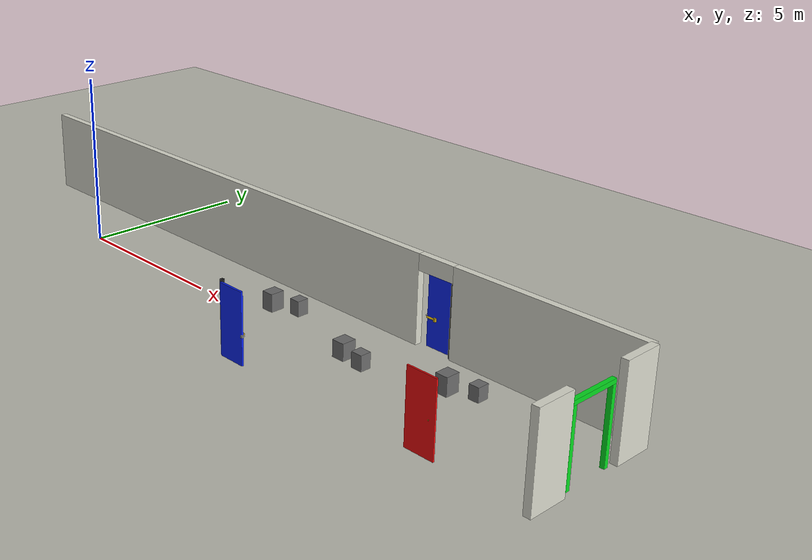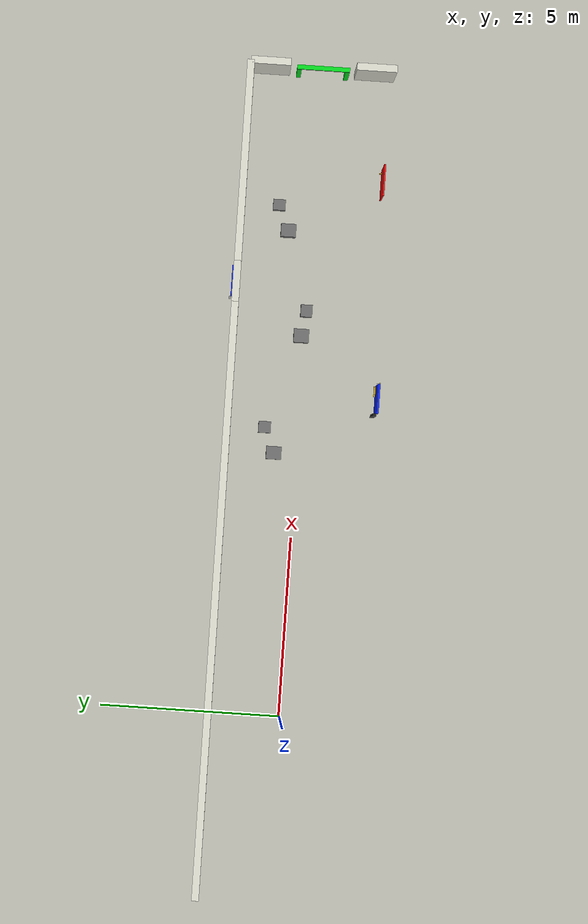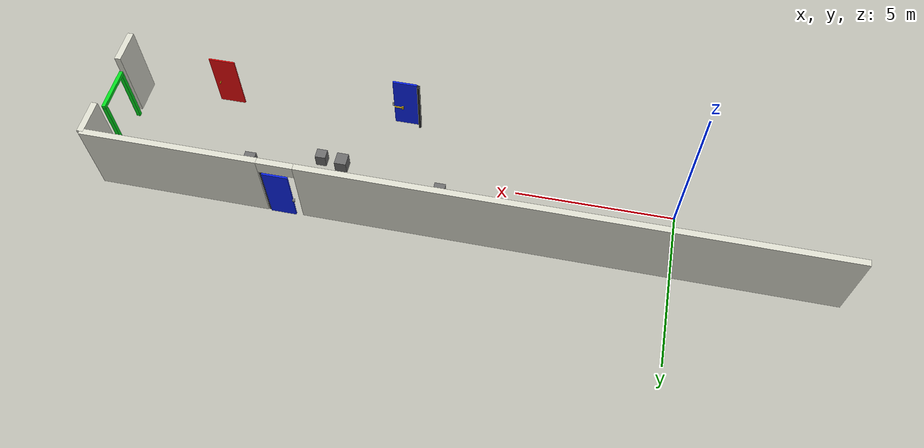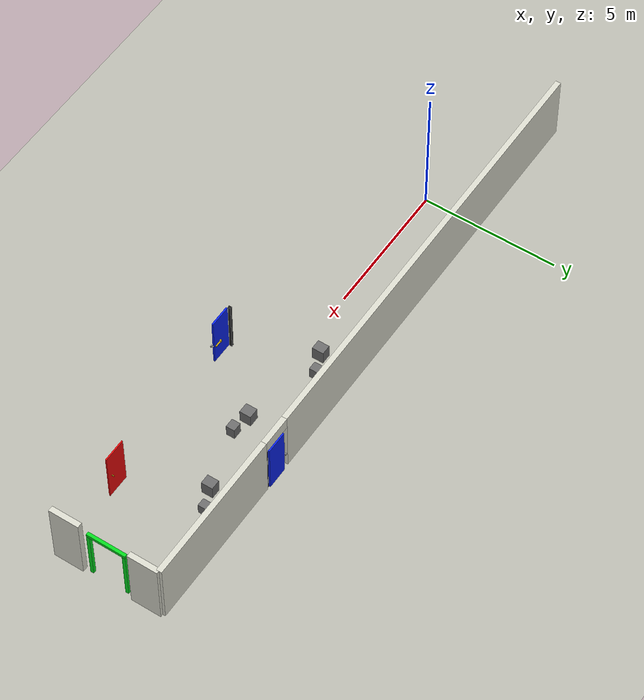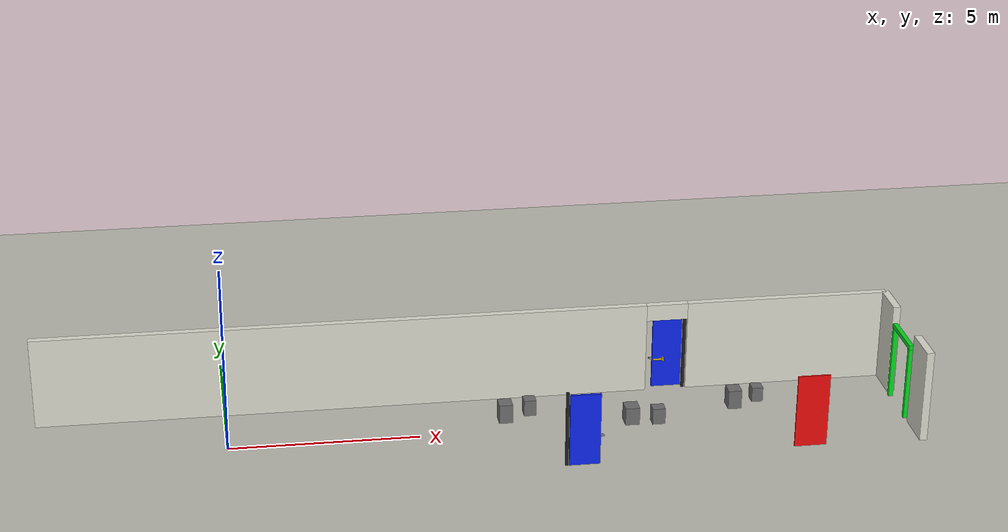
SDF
<sdf version="1.6">
 <world name="fire_corridor">
  <model name="ground_plane">
   <static>true</static>
   <link name="link">
    <collision name="col"><geometry><plane><normal>0 0 1</normal><size>30 10</size></plane></geometry></collision>
    <visual name="vis">
     <geometry><plane><normal>0 0 1</normal><size>30 10</size></plane></geometry>
     <material><ambient>0.72 0.72 0.68 1</ambient><diffuse>0.72 0.72 0.68 1</diffuse></material>
    </visual>
   </link>
  </model>
  <model name="wall_north">
   <static>true</static>
   <pose>6.5 2 1.25 0 0 0</pose>
   <link name="link">
    <collision name="collision_wall_0">
     <geometry><box><size>16.388571 0.200000 2.500000</size></box></geometry>
     <pose>-3.305714 0 0.000000 0 0 0</pose>
    </collision>
    <visual name="visual_wall_0">
     <geometry><box><size>16.388571 0.200000 2.500000</size></box></geometry>
     <material><ambient>0.85 0.85 0.80 1</ambient><diffuse>0.85 0.85 0.80 1</diffuse></material>
     <pose>-3.305714 0 0.000000 0 0 0</pose>
    </visual>
    <collision name="collision_lintel_0">
     <geometry><box><size>1.116429 0.200000 0.450000</size></box></geometry>
     <pose>5.446786 0 1.025000 0 0 0</pose>
    </collision>
    <visual name="visual_lintel_0">
     <geometry><box><size>1.116429 0.200000 0.450000</size></box></geometry>
     <material><ambient>0.85 0.85 0.80 1</ambient><diffuse>0.85 0.85 0.80 1</diffuse></material>
     <pose>5.446786 0 1.025000 0 0 0</pose>
    </visual>
    <collision name="collision_wall_end">
     <geometry><box><size>5.495000 0.200000 2.500000</size></box></geometry>
     <pose>8.752500 0 0.000000 0 0 0</pose>
    </collision>
    <visual name="visual_wall_end">
     <geometry><box><size>5.495000 0.200000 2.500000</size></box></geometry>
     <material><ambient>0.85 0.85 0.80 1</ambient><diffuse>0.85 0.85 0.80 1</diffuse></material>
     <pose>8.752500 0 0.000000 0 0 0</pose>
    </visual>
   </link>
  </model>
  <model name="wall_east_upper">
   <static>true</static>
   <pose>18 1.45 1.25 0 0 0</pose>
   <link name="link">
    <collision name="col"><geometry><box><size>0.2 1.1 2.5</size></box></geometry></collision>
    <visual name="vis">
     <geometry><box><size>0.2 1.1 2.5</size></box></geometry>
     <material><ambient>0.85 0.85 0.80 1</ambient><diffuse>0.85 0.85 0.80 1</diffuse></material>
    </visual>
   </link>
  </model>
  <model name="wall_east_lower">
   <static>true</static>
   <pose>18 -1.45 1.25 0 0 0</pose>
   <link name="link">
    <collision name="col"><geometry><box><size>0.2 1.1 2.5</size></box></geometry></collision>
    <visual name="vis">
     <geometry><box><size>0.2 1.1 2.5</size></box></geometry>
     <material><ambient>0.85 0.85 0.80 1</ambient><diffuse>0.85 0.85 0.80 1</diffuse></material>
    </visual>
   </link>
  </model>
  <model name="door_red3">
   <static>true</static>
   <pose>15.00 -1.86 1.0 0 0 0</pose>
   <link name="link">
    <visual name="panel">
     <geometry><box><size>0.85 0.045 2.0</size></box></geometry>
     <material><ambient>0.92 0.04 0.04 1</ambient><diffuse>0.92 0.04 0.04 1</diffuse></material>
    </visual>
   </link>
  </model>
  <model name="handle_red3">
   <static>true</static>
   <pose>15.24 -1.82 0.95 1.5708 0 0</pose>
   <link name="link">
    <visual name="handle">
     <geometry><cylinder><radius>0.018</radius><length>0.13</length></cylinder></geometry>
     <material><ambient>0.75 0.60 0.05 1</ambient><diffuse>0.75 0.60 0.05 1</diffuse></material>
    </visual>
   </link>
  </model>
  <model name="exit_green">
   <static>true</static>
   <pose>17.92 0 1.0 0 0 0</pose>
   <link name="link">
    <visual name="jamb_left">
     <pose>0.0 0.66 0.0 0.0 0.0 0.0</pose>
     <geometry><box><size>0.12 0.12 2.0</size></box></geometry>
     <material><ambient>0.02 0.85 0.12 1</ambient><diffuse>0.02 0.85 0.12 1</diffuse></material>
    </visual>
    <collision name="jamb_left">
     <pose>0.0 0.66 0.0 0.0 0.0 0.0</pose>
     <geometry><box><size>0.12 0.12 2.0</size></box></geometry>
    </collision>
    <visual name="jamb_right">
     <pose>0.0 -0.66 0.0 0.0 0.0 0.0</pose>
     <geometry><box><size>0.12 0.12 2.0</size></box></geometry>
     <material><ambient>0.02 0.85 0.12 1</ambient><diffuse>0.02 0.85 0.12 1</diffuse></material>
    </visual>
    <collision name="jamb_right">
     <pose>0.0 -0.66 0.0 0.0 0.0 0.0</pose>
     <geometry><box><size>0.12 0.12 2.0</size></box></geometry>
    </collision>
    <visual name="lintel">
     <pose>0.0 0.0 1.06 0.0 0.0 0.0</pose>
     <geometry><box><size>0.12 1.44 0.12</size></box></geometry>
     <material><ambient>0.02 0.85 0.12 1</ambient><diffuse>0.02 0.85 0.12 1</diffuse></material>
    </visual>
    <collision name="lintel">
     <pose>0.0 0.0 1.06 0.0 0.0 0.0</pose>
     <geometry><box><size>0.12 1.44 0.12</size></box></geometry>
    </collision>
   </link>
  </model>
  <model name="v5_center_block_03_pre_blue2">
   <static>true</static>
   <pose>7.35 0.65 0.26 0 0 0</pose>
   <link name="link">
    <collision name="col"><geometry><box><size>0.36 0.42 0.52</size></box></geometry></collision>
    <visual name="vis">
     <geometry><box><size>0.36 0.42 0.52</size></box></geometry>
     <material><ambient>0.42 0.42 0.42 1</ambient><diffuse>0.42 0.42 0.42 1</diffuse></material>
    </visual>
   </link>
  </model>
  <model name="v5_center_block_04_between_blue2_blue3">
   <static>true</static>
   <pose>10.65 0.10 0.24 0 0 0</pose>
   <link name="link">
    <collision name="col"><geometry><box><size>0.38 0.42 0.48</size></box></geometry></collision>
    <visual name="vis">
     <geometry><box><size>0.38 0.42 0.48</size></box></geometry>
     <material><ambient>0.42 0.42 0.42 1</ambient><diffuse>0.42 0.42 0.42 1</diffuse></material>
    </visual>
   </link>
  </model>
  <model name="v5_center_block_05_after_blue3">
   <static>true</static>
   <pose>13.55 0.65 0.26 0 0 0</pose>
   <link name="link">
    <collision name="col"><geometry><box><size>0.36 0.42 0.52</size></box></geometry></collision>
    <visual name="vis">
     <geometry><box><size>0.36 0.42 0.52</size></box></geometry>
     <material><ambient>0.42 0.42 0.42 1</ambient><diffuse>0.42 0.42 0.42 1</diffuse></material>
    </visual>
   </link>
  </model>
  <model name="v5_side_clutter_04_left">
   <static>true</static>
   <pose>8.05 0.95 0.22 0 0 0</pose>
   <link name="link">
    <collision name="col"><geometry><box><size>0.32 0.34 0.44</size></box></geometry></collision>
    <visual name="vis">
     <geometry><box><size>0.32 0.34 0.44</size></box></geometry>
     <material><ambient>0.42 0.42 0.42 1</ambient><diffuse>0.42 0.42 0.42 1</diffuse></material>
    </visual>
   </link>
  </model>
  <model name="v5_side_clutter_05_right">
   <static>true</static>
   <pose>11.35 0.00 0.22 0 0 0</pose>
   <link name="link">
    <collision name="col"><geometry><box><size>0.34 0.32 0.44</size></box></geometry></collision>
    <visual name="vis">
     <geometry><box><size>0.34 0.32 0.44</size></box></geometry>
     <material><ambient>0.42 0.42 0.42 1</ambient><diffuse>0.42 0.42 0.42 1</diffuse></material>
    </visual>
   </link>
  </model>
  <model name="v5_side_clutter_06_left">
   <static>true</static>
   <pose>14.25 0.95 0.20 0 0 0</pose>
   <link name="link">
    <collision name="col"><geometry><box><size>0.30 0.34 0.40</size></box></geometry></collision>
    <visual name="vis">
     <geometry><box><size>0.30 0.34 0.40</size></box></geometry>
     <material><ambient>0.42 0.42 0.42 1</ambient><diffuse>0.42 0.42 0.42 1</diffuse></material>
    </visual>
   </link>
  </model>
  <model name="door_blue2">
   <pose>8.6 -2.1 0 0 0 -1.5707963267948966</pose>
   <self_collide>true</self_collide>
   <link name="frame">
    <inertial><mass>20</mass><inertia><ixx>1</ixx><iyy>1</iyy><izz>1</izz></inertia></inertial>
    <collision name="hinge_post_collision">
     <pose>-0.08 -0.05 1.0 0 0 0</pose>
     <geometry><box><size>0.10 0.08 2.05</size></box></geometry>
    </collision>
    <visual name="hinge_post">
     <pose>-0.08 -0.05 1.0 0 0 0</pose>
     <geometry><box><size>0.10 0.08 2.05</size></box></geometry>
     <material><ambient>0.12 0.12 0.12 1</ambient><diffuse>0.12 0.12 0.12 1</diffuse></material>
    </visual>
    <collision name="latch_strike_collision">
     <pose>0.055 0.84 0.83 0 0 0</pose>
     <geometry><box><size>0.04 0.08 0.05</size></box></geometry>
     <surface>
      <friction><ode><mu>0.7</mu><mu2>0.7</mu2></ode></friction>
      <contact><ode><kp>800000</kp><kd>40</kd></ode></contact>
     </surface>
    </collision>
    <visual name="latch_strike_visual">
     <pose>0.055 0.84 0.83 0 0 0</pose>
     <geometry><box><size>0.04 0.08 0.05</size></box></geometry>
     <material><ambient>0.55 0.55 0.55 1</ambient><diffuse>0.55 0.55 0.55 1</diffuse></material>
    </visual>
    <sensor name="jamb_contacts" type="contact">
     <contact><collision>hinge_post_collision</collision><topic>/proof/contact/door_blue2/jamb</topic></contact>
     <always_on>true</always_on>
     <update_rate>20</update_rate>
    </sensor>
    <sensor name="strike_contacts" type="contact">
     <contact>
      <collision>latch_strike_collision</collision>
      <topic>/proof/contact/door_blue2/strike</topic>
     </contact>
     <always_on>true</always_on>
     <update_rate>20</update_rate>
    </sensor>
   </link>
   <joint name="frame_fixed" type="fixed"><parent>world</parent><child>frame</child></joint>
   <link name="panel">
    <pose>0 0.40 1.0 0 0 0</pose>
    <inertial><mass>18.0</mass><inertia><ixx>6.96</ixx><iyy>6.01</iyy><izz>0.97</izz></inertia></inertial>
    <collision name="panel_collision">
     <geometry><box><size>0.06 0.80 1.98</size></box></geometry>
     <surface>
      <friction><ode><mu>1.5</mu><mu2>1.5</mu2></ode></friction>
      <contact><ode><kp>600000</kp><kd>30</kd></ode></contact>
     </surface>
    </collision>
    <visual name="panel_visual">
     <geometry><box><size>0.06 0.80 1.98</size></box></geometry>
     <material><ambient>0.04 0.14 0.92 1</ambient><diffuse>0.04 0.14 0.92 1</diffuse></material>
    </visual>
    <collision name="handle_mount_collision">
     <pose>-0.078 0.11 -0.17 0 0 0</pose>
     <geometry><box><size>0.05 0.06 0.10</size></box></geometry>
     <surface>
      <friction><ode><mu>0.8</mu><mu2>0.8</mu2></ode></friction>
      <contact><ode><kp>800000</kp><kd>40</kd></ode></contact>
     </surface>
    </collision>
    <visual name="handle_mount_visual">
     <pose>-0.078 0.11 -0.17 0 0 0</pose>
     <geometry><box><size>0.05 0.06 0.10</size></box></geometry>
     <material><ambient>0.8 0.65 0.05 1</ambient><diffuse>0.8 0.65 0.05 1</diffuse></material>
    </visual>
    <sensor name="panel_contact_diagnostic" type="contact">
     <contact><collision>panel_collision</collision><topic>/proof/contact/door_blue2/panel</topic></contact>
     <always_on>true</always_on>
     <update_rate>20</update_rate>
    </sensor>
   </link>
   <link name="lever">
    <pose>-0.075 0.51 0.83 0 0 0</pose>
    <inertial><mass>0.22</mass><inertia><ixx>0.0013</ixx><iyy>0.00015</iyy><izz>0.0013</izz></inertia></inertial>
    <collision name="lever_collision">
     <pose>0 0.13 0 1.5708 0 0</pose>
     <geometry><cylinder><radius>0.026</radius><length>0.26</length></cylinder></geometry>
     <surface>
      <friction><ode><mu>5.0</mu><mu2>5.0</mu2></ode></friction>
      <contact><ode><kp>800000</kp><kd>40</kd></ode></contact>
     </surface>
    </collision>
    <visual name="lever_visual">
     <pose>0 0.13 0 1.5708 0 0</pose>
     <geometry><cylinder><radius>0.026</radius><length>0.26</length></cylinder></geometry>
     <material><ambient>0.8 0.65 0.05 1</ambient><diffuse>0.8 0.65 0.05 1</diffuse></material>
    </visual>
    <collision name="latch_bolt_collision">
     <pose>0.075 0.32 0 0 0 0</pose>
     <geometry><box><size>0.05 0.05 0.03</size></box></geometry>
     <surface>
      <friction><ode><mu>0.35</mu><mu2>0.35</mu2></ode></friction>
      <contact><ode><kp>800000</kp><kd>40</kd></ode></contact>
     </surface>
    </collision>
    <visual name="latch_bolt_visual">
     <pose>0.075 0.32 0 0 0 0</pose>
     <geometry><box><size>0.05 0.05 0.03</size></box></geometry>
     <material><ambient>0.7 0.7 0.7 1</ambient><diffuse>0.7 0.7 0.7 1</diffuse></material>
    </visual>
    <sensor name="lever_contact_diagnostic" type="contact">
     <contact><collision>lever_collision</collision><topic>/proof/contact/door_blue2/lever</topic></contact>
     <always_on>true</always_on>
     <update_rate>20</update_rate>
    </sensor>
    <sensor name="latch_contact_diagnostic" type="contact">
     <contact><collision>latch_bolt_collision</collision><topic>/proof/contact/door_blue2/latch</topic></contact>
     <always_on>true</always_on>
     <update_rate>20</update_rate>
    </sensor>
   </link>
   <joint name="lever_joint" type="revolute">
    <parent>panel</parent>
    <child>lever</child>
    <axis>
     <xyz>1 0 0</xyz>
     <limit><lower>-0.55</lower><upper>0.10</upper><effort>25</effort><velocity>1.2</velocity></limit>
     <dynamics>
      <damping>0.40</damping>
      <friction>0.04</friction>
      <spring_reference>0.0</spring_reference>
      <spring_stiffness>6.0</spring_stiffness>
     </dynamics>
    </axis>
   </joint>
   <joint name="door_hinge" type="revolute">
    <pose>0 -0.40 0 0 0 0</pose>
    <parent>frame</parent>
    <child>panel</child>
    <axis>
     <xyz>0 0 1</xyz>
     <limit><lower>-2.25</lower><upper>0.05</upper><effort>120</effort><velocity>2.0</velocity></limit>
     <dynamics><damping>0.80</damping><friction>2.0</friction></dynamics>
    </axis>
   </joint>
   <plugin filename="gz-sim-joint-state-publisher-system" name="gz::sim::systems::JointStatePublisher">
    <topic>/evaluation/door_blue2/joints</topic>
   </plugin>
  </model>
  <model name="door_blue3">
   <pose>12.4 2.1 0 0 0 1.5707963267948966</pose>
   <self_collide>true</self_collide>
   <link name="frame">
    <inertial><mass>20</mass><inertia><ixx>1</ixx><iyy>1</iyy><izz>1</izz></inertia></inertial>
    <collision name="hinge_post_collision">
     <pose>-0.08 -0.05 1.0 0 0 0</pose>
     <geometry><box><size>0.10 0.08 2.05</size></box></geometry>
    </collision>
    <visual name="hinge_post">
     <pose>-0.08 -0.05 1.0 0 0 0</pose>
     <geometry><box><size>0.10 0.08 2.05</size></box></geometry>
     <material><ambient>0.12 0.12 0.12 1</ambient><diffuse>0.12 0.12 0.12 1</diffuse></material>
    </visual>
    <collision name="latch_strike_collision">
     <pose>0.055 0.84 0.83 0 0 0</pose>
     <geometry><box><size>0.04 0.08 0.05</size></box></geometry>
     <surface>
      <friction><ode><mu>0.7</mu><mu2>0.7</mu2></ode></friction>
      <contact><ode><kp>800000</kp><kd>40</kd></ode></contact>
     </surface>
    </collision>
    <visual name="latch_strike_visual">
     <pose>0.055 0.84 0.83 0 0 0</pose>
     <geometry><box><size>0.04 0.08 0.05</size></box></geometry>
     <material><ambient>0.55 0.55 0.55 1</ambient><diffuse>0.55 0.55 0.55 1</diffuse></material>
    </visual>
    <sensor name="jamb_contacts" type="contact">
     <contact><collision>hinge_post_collision</collision><topic>/proof/contact/door_blue3/jamb</topic></contact>
     <always_on>true</always_on>
     <update_rate>20</update_rate>
    </sensor>
    <sensor name="strike_contacts" type="contact">
     <contact>
      <collision>latch_strike_collision</collision>
      <topic>/proof/contact/door_blue3/strike</topic>
     </contact>
     <always_on>true</always_on>
     <update_rate>20</update_rate>
    </sensor>
   </link>
   <joint name="frame_fixed" type="fixed"><parent>world</parent><child>frame</child></joint>
   <link name="panel">
    <pose>0 0.40 1.0 0 0 0</pose>
    <inertial><mass>18.0</mass><inertia><ixx>6.96</ixx><iyy>6.01</iyy><izz>0.97</izz></inertia></inertial>
    <collision name="panel_collision">
     <geometry><box><size>0.06 0.80 1.98</size></box></geometry>
     <surface>
      <friction><ode><mu>1.5</mu><mu2>1.5</mu2></ode></friction>
      <contact><ode><kp>600000</kp><kd>30</kd></ode></contact>
     </surface>
    </collision>
    <visual name="panel_visual">
     <geometry><box><size>0.06 0.80 1.98</size></box></geometry>
     <material><ambient>0.04 0.14 0.92 1</ambient><diffuse>0.04 0.14 0.92 1</diffuse></material>
    </visual>
    <collision name="handle_mount_collision">
     <pose>-0.078 0.11 -0.17 0 0 0</pose>
     <geometry><box><size>0.05 0.06 0.10</size></box></geometry>
     <surface>
      <friction><ode><mu>0.8</mu><mu2>0.8</mu2></ode></friction>
      <contact><ode><kp>800000</kp><kd>40</kd></ode></contact>
     </surface>
    </collision>
    <visual name="handle_mount_visual">
     <pose>-0.078 0.11 -0.17 0 0 0</pose>
     <geometry><box><size>0.05 0.06 0.10</size></box></geometry>
     <material><ambient>0.8 0.65 0.05 1</ambient><diffuse>0.8 0.65 0.05 1</diffuse></material>
    </visual>
    <sensor name="panel_contact_diagnostic" type="contact">
     <contact><collision>panel_collision</collision><topic>/proof/contact/door_blue3/panel</topic></contact>
     <always_on>true</always_on>
     <update_rate>20</update_rate>
    </sensor>
   </link>
   <link name="lever">
    <pose>-0.075 0.51 0.83 0 0 0</pose>
    <inertial><mass>0.22</mass><inertia><ixx>0.0013</ixx><iyy>0.00015</iyy><izz>0.0013</izz></inertia></inertial>
    <collision name="lever_collision">
     <pose>0 0.13 0 1.5708 0 0</pose>
     <geometry><cylinder><radius>0.026</radius><length>0.26</length></cylinder></geometry>
     <surface>
      <friction><ode><mu>5.0</mu><mu2>5.0</mu2></ode></friction>
      <contact><ode><kp>800000</kp><kd>40</kd></ode></contact>
     </surface>
    </collision>
    <visual name="lever_visual">
     <pose>0 0.13 0 1.5708 0 0</pose>
     <geometry><cylinder><radius>0.026</radius><length>0.26</length></cylinder></geometry>
     <material><ambient>0.8 0.65 0.05 1</ambient><diffuse>0.8 0.65 0.05 1</diffuse></material>
    </visual>
    <collision name="latch_bolt_collision">
     <pose>0.075 0.32 0 0 0 0</pose>
     <geometry><box><size>0.05 0.05 0.03</size></box></geometry>
     <surface>
      <friction><ode><mu>0.35</mu><mu2>0.35</mu2></ode></friction>
      <contact><ode><kp>800000</kp><kd>40</kd></ode></contact>
     </surface>
    </collision>
    <visual name="latch_bolt_visual">
     <pose>0.075 0.32 0 0 0 0</pose>
     <geometry><box><size>0.05 0.05 0.03</size></box></geometry>
     <material><ambient>0.7 0.7 0.7 1</ambient><diffuse>0.7 0.7 0.7 1</diffuse></material>
    </visual>
    <sensor name="lever_contact_diagnostic" type="contact">
     <contact><collision>lever_collision</collision><topic>/proof/contact/door_blue3/lever</topic></contact>
     <always_on>true</always_on>
     <update_rate>20</update_rate>
    </sensor>
    <sensor name="latch_contact_diagnostic" type="contact">
     <contact><collision>latch_bolt_collision</collision><topic>/proof/contact/door_blue3/latch</topic></contact>
     <always_on>true</always_on>
     <update_rate>20</update_rate>
    </sensor>
   </link>
   <joint name="lever_joint" type="revolute">
    <parent>panel</parent>
    <child>lever</child>
    <axis>
     <xyz>1 0 0</xyz>
     <limit><lower>-0.55</lower><upper>0.10</upper><effort>25</effort><velocity>1.2</velocity></limit>
     <dynamics>
      <damping>0.40</damping>
      <friction>0.04</friction>
      <spring_reference>0.0</spring_reference>
      <spring_stiffness>6.0</spring_stiffness>
     </dynamics>
    </axis>
   </joint>
   <joint name="door_hinge" type="revolute">
    <pose>0 -0.40 0 0 0 0</pose>
    <parent>frame</parent>
    <child>panel</child>
    <axis>
     <xyz>0 0 1</xyz>
     <limit><lower>-2.25</lower><upper>0.05</upper><effort>120</effort><velocity>2.0</velocity></limit>
     <dynamics><damping>0.80</damping><friction>2.0</friction></dynamics>
    </axis>
   </joint>
   <plugin filename="gz-sim-joint-state-publisher-system" name="gz::sim::systems::JointStatePublisher">
    <topic>/evaluation/door_blue3/joints</topic>
   </plugin>
  </model>
 </world>
</sdf>
